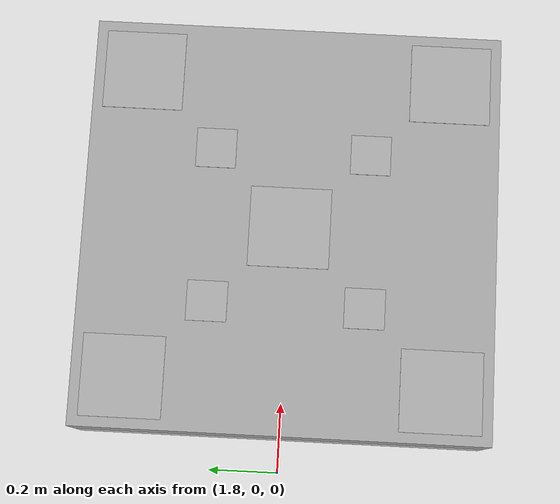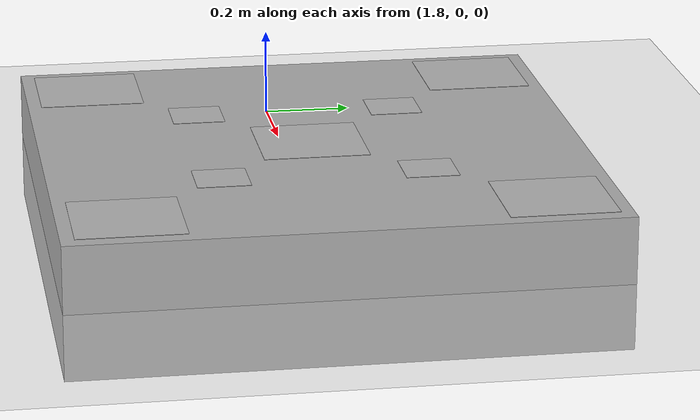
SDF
<?xml version="1.0"?>
<sdf version="1.5">
  <world name="default">
    <gui>
      <camera name="user_camera">
        <pose>-8.89 -14.33 12.97 0.0 0.58 0.84</pose>
        <track_visual>
          <static>true</static>
          <use_model_frame>true</use_model_frame>
          <xyz>-3 0 1</xyz>
          <inherit_yaw>true</inherit_yaw>
        </track_visual>
      </camera>
    </gui>
    <spherical_coordinates>
      <latitude_deg>48.878922</latitude_deg>
      <longitude_deg>2.367782</longitude_deg>
    </spherical_coordinates>
    <physics type="ode">
      <real_time_update_rate>1000</real_time_update_rate>
      <max_step_size>0.001</max_step_size>
      <real_time_factor>1.0</real_time_factor>
      <max_contacts>20</max_contacts>
      <gravity>0 0 -9.81</gravity>
      <magnetic_field>0.1062e-6 20.8038e-6 -43.2881e-6</magnetic_field>
      <ode>
        <solver>
          <type>world</type>
          <min_step_size>0.0001</min_step_size>
          <iters>50</iters>
          <precon_iters>0</precon_iters>
          <sor>1.4</sor>
          <use_dynamic_moi_rescaling>1</use_dynamic_moi_rescaling>
        </solver>
        <constraints>
          <cfm>0</cfm>
          <erp>0.2</erp>
          <contact_max_correcting_vel>100.0</contact_max_correcting_vel>
          <contact_surface_layer>0.001</contact_surface_layer>
        </constraints>
      </ode>
    </physics>
    <atmosphere type="adiabatic">
      <temperature>298.15</temperature>
      <pressure>101325</pressure>
      <temperature_gradient>-0.0065</temperature_gradient>
    </atmosphere>
    <plugin name="fwman" filename="libsphinx_fwman.so">
      <spawn_point name="default">
        <pose>0 0 0.2 0 0 0</pose>
      </spawn_point>
    </plugin>
    <!--Scene description-->
    <include>
      <uri>model://sun</uri>
    </include>
    <include>
      <uri>model://ground_plane</uri>
    </include>
    <include>
      <uri>model://vision_landing_platform</uri>
      <pose> 2.5 0 0 0 0 0 </pose>
    </include>
  </world>
</sdf>

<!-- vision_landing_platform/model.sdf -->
<sdf version="1.4">
  <model name="vision_landing_platform">
    <static>1</static>
    <gravity>0</gravity>
    <link name="sensors_link">
    <inertial>
      <mass value="5000"/>
      <inertia ixx="0.4" ixy="0.0" ixz="0.0" iyy="0.4" iyz="0.0" izz="0.2"/>
    </inertial>
    <collision name="box_collision">
          <geometry>
            <box>
              <size>1.2 1.2 0.3</size>
            </box>
          </geometry>
      <surface>
        <friction>
          <ode>
            <mu>0.99</mu>
            <mu2>0.99</mu2>
          </ode>
        </friction>
      </surface>
        </collision>

   	<visual name="visual0">
          <geometry>
            <box>
              <size>0.235 0.235 0.001</size>
            </box>
          </geometry>
        <material>
          <script>
            <uri>model://vision_landing_platform/materials/scripts</uri>
            <uri>model://vision_landing_platform/materials/textures</uri>
            <name>aruco0</name>
          </script>
        </material>
        <pose frame=''>-0.4525 -0.4525 0.15 0 -0 0</pose>
        <cast_shadows>1</cast_shadows>
        <transparency>0.0</transparency>
        </visual>

   	<visual name="visual1">
          <geometry>
            <box>
              <size>0.235 0.235 0.001</size>
            </box>
          </geometry>
        <material>
          <script>
            <uri>model://vision_landing_platform/materials/scripts</uri>
            <uri>model://vision_landing_platform/materials/textures</uri>
            <name>aruco1</name>
          </script>
        </material>
        <pose frame=''>-0.4525 0.4525 0.15 0 -0 0</pose>
        <cast_shadows>1</cast_shadows>
        <transparency>0.0</transparency>
        </visual>

   	<visual name="visual2">
          <geometry>
            <box>
              <size>0.235 0.235 0.001</size>
            </box>
          </geometry>
        <material>
          <script>
            <uri>model://vision_landing_platform/materials/scripts</uri>
            <uri>model://vision_landing_platform/materials/textures</uri>
            <name>aruco2</name>
          </script>
        </material>
        <pose frame=''>0.4525 0.4525 0.15 0 -0 0</pose>
        <cast_shadows>1</cast_shadows>
        <transparency>0.0</transparency>
        </visual>

   	<visual name="visual3">
          <geometry>
            <box>
              <size>0.235 0.235 0.001</size>
            </box>
          </geometry>
        <material>
          <script>
            <uri>model://vision_landing_platform/materials/scripts</uri>
            <uri>model://vision_landing_platform/materials/textures</uri>
            <name>aruco3</name>
          </script>
        </material>
        <pose frame=''>0.4525 -0.4525 0.15 0 -0 0</pose>
        <cast_shadows>1</cast_shadows>
        <transparency>0.0</transparency>
        </visual>

   	<visual name="visual4">
          <geometry>
            <box>
              <size>0.235 0.235 0.001</size>
            </box>
          </geometry>
        <material>
          <script>
            <uri>model://vision_landing_platform/materials/scripts</uri>
            <uri>model://vision_landing_platform/materials/textures</uri>
            <name>aruco4</name>
          </script>
        </material>
        <pose frame=''>0 0 0.15 0 -0 0</pose>
        <cast_shadows>1</cast_shadows>
        <transparency>0.0</transparency>
        </visual>

   	<visual name="visual5">
          <geometry>
            <box>
              <size>0.117 0.117 0.001</size>
            </box>
          </geometry>
        <material>
          <script>
            <uri>model://vision_landing_platform/materials/scripts</uri>
            <uri>model://vision_landing_platform/materials/textures</uri>
            <name>aruco5</name>
          </script>
        </material>
        <pose frame=''>0.2262 0.2262 0.15 0 -0 0</pose>
        <cast_shadows>1</cast_shadows>
        <transparency>0.0</transparency>
        </visual>

   	<visual name="visual6">
          <geometry>
            <box>
              <size>0.117 0.117 0.001</size>
            </box>
          </geometry>
        <material>
          <script>
            <uri>model://vision_landing_platform/materials/scripts</uri>
            <uri>model://vision_landing_platform/materials/textures</uri>
            <name>aruco6</name>
          </script>
        </material>
        <pose frame=''>0.2262 -0.2262 0.15 0 -0 0</pose>
        <cast_shadows>1</cast_shadows>
        <transparency>0.0</transparency>
        </visual>

   	<visual name="visual7">
          <geometry>
            <box>
              <size>0.117 0.117 0.001</size>
            </box>
          </geometry>
        <material>
          <script>
            <uri>model://vision_landing_platform/materials/scripts</uri>
            <uri>model://vision_landing_platform/materials/textures</uri>
            <name>aruco7</name>
          </script>
        </material>
        <pose frame=''>-0.2262 -0.2262 0.15 0 -0 0</pose>
        <cast_shadows>1</cast_shadows>
        <transparency>0.0</transparency>
        </visual>

   	<visual name="visual8">
          <geometry>
            <box>
              <size>0.117 0.117 0.001</size>
            </box>
          </geometry>
        <material>
          <script>
            <uri>model://vision_landing_platform/materials/scripts</uri>
            <uri>model://vision_landing_platform/materials/textures</uri>
            <name>aruco8</name>
          </script>
        </material>
        <pose frame=''>-0.2262 0.2262 0.15 0 -0 0</pose>
        <cast_shadows>1</cast_shadows>
        <transparency>0.0</transparency>
        </visual>

        <visual name="visual">
          <geometry>
            <box>
              <size>1.2 1.2 0.295</size>
            </box>
          </geometry>
        <material>
          <ambient>0.3 0.3 0.3 1</ambient>
          <diffuse>0.7 0.7 0.7 1</diffuse>
          <specular>0.01 0.01 0.01 1</specular>
          <emissive>0.7 0.7 0.7 1</emissive>
          <shader type='vertex'>
            <normal_map>__default__</normal_map>
          </shader>
        </material>
        <pose frame=''>0 0 0 0 -0 0</pose>
        <cast_shadows>1</cast_shadows>
        <transparency>0.0</transparency>
        </visual>
    </link>
      <plugin name="animated_platform" filename="libanimated_platform.so"/>
  </model>
</sdf>
